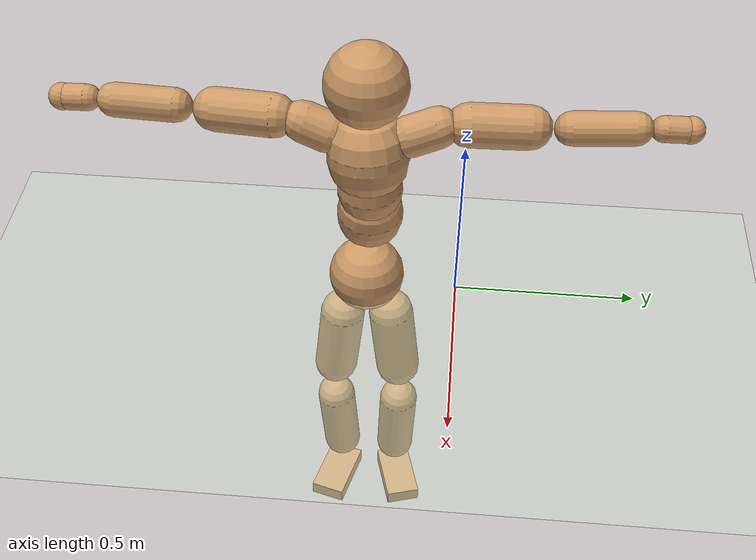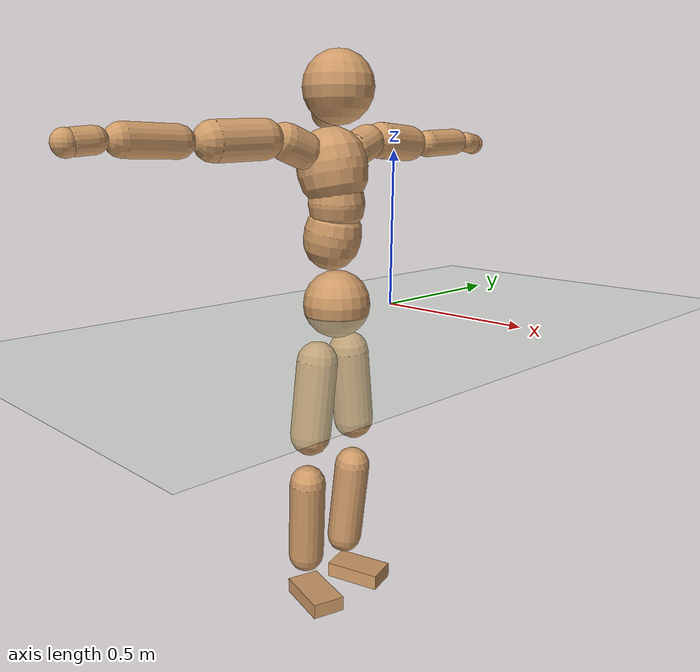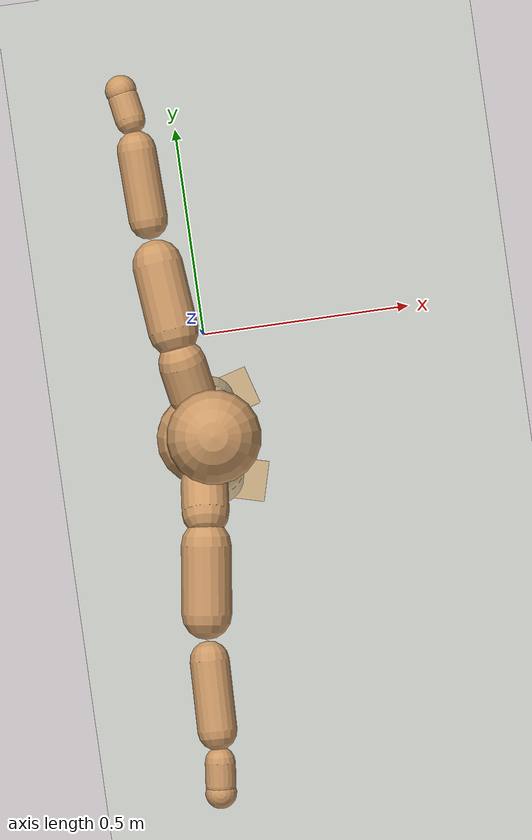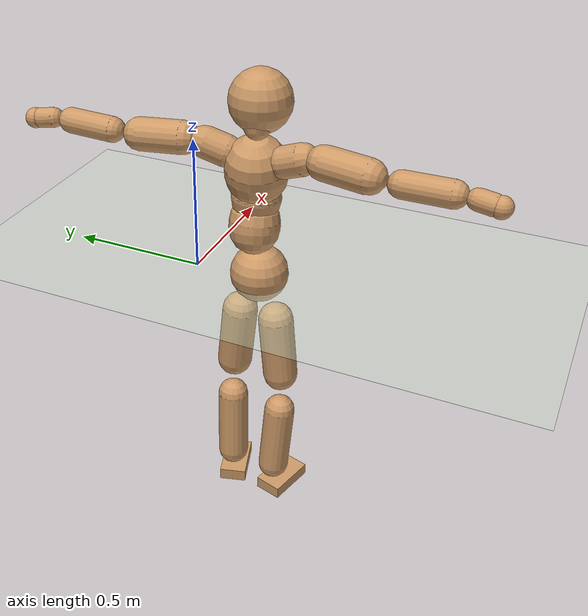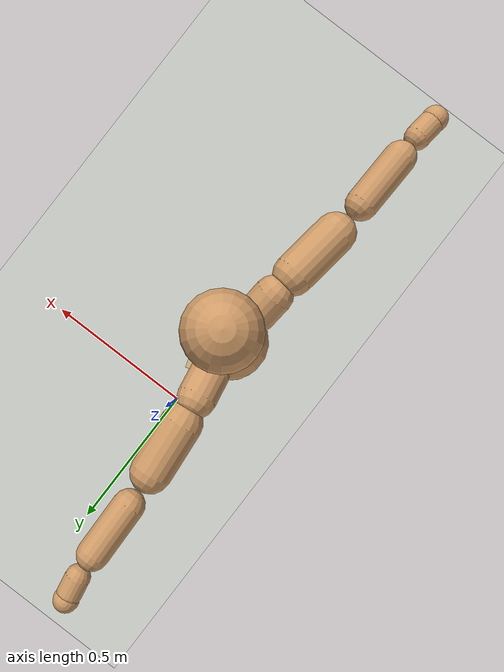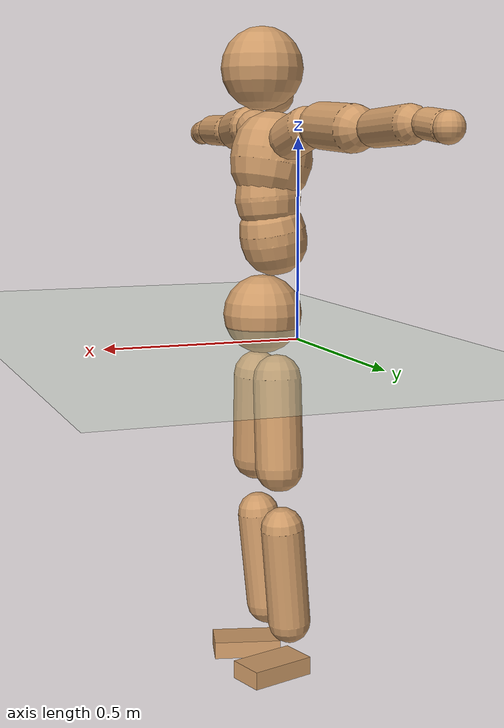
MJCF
<mujoco model="humanoid">
  <compiler coordinate="local"/>
  <default>
    <joint damping="0.0" armature="0.01" stiffness="0.0" limited="true"/>
    <geom conaffinity="1" condim="3" contype="7" margin="0.001" rgba="0.8 0.6 .4 1"/>
  </default>
  <asset>
    <texture type="skybox" builtin="gradient" rgb1=".4 .5 .6" rgb2="0 0 0" width="100" height="100"/>
    <texture builtin="flat" height="1278" mark="cross" markrgb="1 1 1" name="texgeom" random="0.01" rgb1="0.8 0.6 0.4" rgb2="0.8 0.6 0.4" type="cube" width="127"/>
    <texture builtin="checker" height="100" name="texplane" rgb1="0 0 0" rgb2="0.8 0.8 0.8" type="2d" width="100"/>
    <material name="MatPlane" reflectance="0.5" shininess="1" specular="1" texrepeat="60 60" texture="texplane"/>
    <material name="geom" texture="texgeom" texuniform="true"/>
  </asset>
  <worldbody>
    <light cutoff="100" diffuse="1 1 1" dir="-0 0 -1.3" directional="true" exponent="1" pos="0 0 1.3" specular=".1 .1 .1"/>
    <geom conaffinity="1" condim="3" name="floor" pos="0 0 0" rgba="0.8 0.9 0.8 1" size="100 100 .2" type="plane" material="MatPlane"/>
    <body name="Pelvis" pos="-0.0029 -0.2535 0.0334">
      <freejoint name="Pelvis"/>
      <geom type="sphere" contype="1" conaffinity="1" density="500" size="0.1060" pos="0.0000 0.0000 0.0000" name="Pelvis"/>
      <body name="L_Hip" pos="-0.016 0.0614 -0.0876">
        <joint name="L_Hip_x" type="hinge" pos="0 0 0" axis="1 0 0" stiffness="800" damping="80" armature="0.02" range="-180.0000 180.0000"/>
        <joint name="L_Hip_y" type="hinge" pos="0 0 0" axis="0 1 0" stiffness="800" damping="80" armature="0.02" range="-180.0000 180.0000"/>
        <joint name="L_Hip_z" type="hinge" pos="0 0 0" axis="0 0 1" stiffness="800" damping="80" armature="0.02" range="-180.0000 180.0000"/>
        <geom type="capsule" contype="1" conaffinity="1" density="500" fromto="0.0009 0.0082 -0.0796 0.0034 0.0327 -0.3184" size="0.0651" name="L_Hip"/>
        <body name="L_Knee" pos="0.0043 0.0409 -0.3979">
          <joint name="L_Knee_x" type="hinge" pos="0 0 0" axis="1 0 0" stiffness="800" damping="80" armature="0.02" range="-180.0000 180.0000"/>
          <joint name="L_Knee_y" type="hinge" pos="0 0 0" axis="0 1 0" stiffness="800" damping="80" armature="0.02" range="-180.0000 180.0000"/>
          <joint name="L_Knee_z" type="hinge" pos="0 0 0" axis="0 0 1" stiffness="800" damping="80" armature="0.02" range="-180.0000 180.0000"/>
          <geom type="capsule" contype="1" conaffinity="1" density="500" fromto="-0.0084 -0.0034 -0.0897 -0.0337 -0.0135 -0.3589" size="0.0585" name="L_Knee"/>
          <body name="L_Ankle" pos="-0.0421 -0.0168 -0.4486">
            <joint name="L_Ankle_x" type="hinge" pos="0 0 0" axis="1 0 0" stiffness="800" damping="80" armature="0.02" range="-180.0000 180.0000"/>
            <joint name="L_Ankle_y" type="hinge" pos="0 0 0" axis="0 1 0" stiffness="800" damping="80" armature="0.02" range="-180.0000 180.0000"/>
            <joint name="L_Ankle_z" type="hinge" pos="0 0 0" axis="0 0 1" stiffness="800" damping="80" armature="0.02" range="-180.0000 180.0000"/>
            <geom type="box" contype="1" conaffinity="1" density="500" pos="0.0637 0.0183 -0.0311" size="0.092 0.0517 0.0245" quat="0.9902 0.0000 0.0000 0.1398" name="L_Ankle"/>
            <body name="L_Toe" pos="0.1274 0.0367 -0.0622">
              <joint name="L_Toe_x" type="hinge" pos="0 0 0" axis="1 0 0" stiffness="500" damping="50" armature="0.02" range="-180.0000 180.0000"/>
              <joint name="L_Toe_y" type="hinge" pos="0 0 0" axis="0 1 0" stiffness="500" damping="50" armature="0.02" range="-180.0000 180.0000"/>
              <joint name="L_Toe_z" type="hinge" pos="0 0 0" axis="0 0 1" stiffness="500" damping="50" armature="0.02" range="-180.0000 180.0000"/>
              <geom type="box" contype="1" conaffinity="1" density="500" pos="0.0000 0.0000 0.0306" size="0.0011 0.0026 0.0012" quat="0.9895 0.0000 0.0000 0.1448" name="L_Toe"/>
            </body>
          </body>
        </body>
      </body>
      <body name="R_Hip" pos="-0.0101 -0.0641 -0.0971">
        <joint name="R_Hip_x" type="hinge" pos="0 0 0" axis="1 0 0" stiffness="800" damping="80" armature="0.02" range="-180.0000 180.0000"/>
        <joint name="R_Hip_y" type="hinge" pos="0 0 0" axis="0 1 0" stiffness="800" damping="80" armature="0.02" range="-180.0000 180.0000"/>
        <joint name="R_Hip_z" type="hinge" pos="0 0 0" axis="0 0 1" stiffness="800" damping="80" armature="0.02" range="-180.0000 180.0000"/>
        <geom type="capsule" contype="1" conaffinity="1" density="500" fromto="-0.0018 -0.0085 -0.0798 -0.0070 -0.0342 -0.3193" size="0.0647" name="R_Hip"/>
        <body name="R_Knee" pos="-0.0088 -0.0427 -0.3991">
          <joint name="R_Knee_x" type="hinge" pos="0 0 0" axis="1 0 0" stiffness="800" damping="80" armature="0.02" range="-180.0000 180.0000"/>
          <joint name="R_Knee_y" type="hinge" pos="0 0 0" axis="0 1 0" stiffness="800" damping="80" armature="0.02" range="-180.0000 180.0000"/>
          <joint name="R_Knee_z" type="hinge" pos="0 0 0" axis="0 0 1" stiffness="800" damping="80" armature="0.02" range="-180.0000 180.0000"/>
          <geom type="capsule" contype="1" conaffinity="1" density="500" fromto="-0.0077 0.0042 -0.0887 -0.0307 0.0168 -0.3547" size="0.0583" name="R_Knee"/>
          <body name="R_Ankle" pos="-0.0384 0.0211 -0.4434">
            <joint name="R_Ankle_x" type="hinge" pos="0 0 0" axis="1 0 0" stiffness="800" damping="80" armature="0.02" range="-180.0000 180.0000"/>
            <joint name="R_Ankle_y" type="hinge" pos="0 0 0" axis="0 1 0" stiffness="800" damping="80" armature="0.02" range="-180.0000 180.0000"/>
            <joint name="R_Ankle_z" type="hinge" pos="0 0 0" axis="0 0 1" stiffness="800" damping="80" armature="0.02" range="-180.0000 180.0000"/>
            <geom type="box" contype="1" conaffinity="1" density="500" pos="0.0676 -0.0183 -0.0323" size="0.0932 0.0533 0.0237" quat="0.9913 0.0000 0.0000 -0.1316" name="R_Ankle"/>
            <body name="R_Toe" pos="0.1352 -0.0366 -0.0646">
              <joint name="R_Toe_x" type="hinge" pos="0 0 0" axis="1 0 0" stiffness="500" damping="50" armature="0.02" range="-180.0000 180.0000"/>
              <joint name="R_Toe_y" type="hinge" pos="0 0 0" axis="0 1 0" stiffness="500" damping="50" armature="0.02" range="-180.0000 180.0000"/>
              <joint name="R_Toe_z" type="hinge" pos="0 0 0" axis="0 0 1" stiffness="500" damping="50" armature="0.02" range="-180.0000 180.0000"/>
              <geom type="box" contype="1" conaffinity="1" density="500" pos="0.0000 0.0000 0.0332" size="0.0011 0.0026 0.0012" quat="0.9924 0.0000 0.0000 -0.1230" name="R_Toe"/>
            </body>
          </body>
        </body>
      </body>
      <body name="Torso" pos="-0.0415 0.005 0.1352">
        <joint name="Torso_x" type="hinge" pos="0 0 0" axis="1 0 0" stiffness="1000" damping="100" armature="0.02" range="-180.0000 180.0000"/>
        <joint name="Torso_y" type="hinge" pos="0 0 0" axis="0 1 0" stiffness="1000" damping="100" armature="0.02" range="-180.0000 180.0000"/>
        <joint name="Torso_z" type="hinge" pos="0 0 0" axis="0 0 1" stiffness="1000" damping="100" armature="0.02" range="-180.0000 180.0000"/>
        <geom type="capsule" contype="1" conaffinity="1" density="500" fromto="0.0170 0.0031 0.0865 0.0113 0.0020 0.0577" size="0.0896" name="Torso"/>
        <body name="Spine" pos="0.0283 0.0051 0.1442">
          <joint name="Spine_x" type="hinge" pos="0 0 0" axis="1 0 0" stiffness="1000" damping="100" armature="0.02" range="-180.0000 180.0000"/>
          <joint name="Spine_y" type="hinge" pos="0 0 0" axis="0 1 0" stiffness="1000" damping="100" armature="0.02" range="-180.0000 180.0000"/>
          <joint name="Spine_z" type="hinge" pos="0 0 0" axis="0 0 1" stiffness="1000" damping="100" armature="0.02" range="-180.0000 180.0000"/>
          <geom type="capsule" contype="1" conaffinity="1" density="500" fromto="0.0025 -0.0017 0.0351 0.0017 -0.0011 0.0234" size="0.0878" name="Spine"/>
          <body name="Chest" pos="0.0042 -0.0029 0.0585">
            <joint name="Chest_x" type="hinge" pos="0 0 0" axis="1 0 0" stiffness="1000" damping="100" armature="0.02" range="-180.0000 180.0000"/>
            <joint name="Chest_y" type="hinge" pos="0 0 0" axis="0 1 0" stiffness="1000" damping="100" armature="0.02" range="-180.0000 180.0000"/>
            <joint name="Chest_z" type="hinge" pos="0 0 0" axis="0 0 1" stiffness="1000" damping="100" armature="0.02" range="-180.0000 180.0000"/>
            <geom type="capsule" contype="1" conaffinity="1" density="500" fromto="-0.0175 -0.0051 0.0921 -0.0117 -0.0034 0.0614" size="0.1089" name="Chest"/>
            <body name="Neck" pos="-0.04 -0.0148 0.2219">
              <joint name="Neck_x" type="hinge" pos="0 0 0" axis="1 0 0" stiffness="500" damping="50" armature="0.02" range="-180.0000 180.0000"/>
              <joint name="Neck_y" type="hinge" pos="0 0 0" axis="0 1 0" stiffness="500" damping="50" armature="0.02" range="-180.0000 180.0000"/>
              <joint name="Neck_z" type="hinge" pos="0 0 0" axis="0 0 1" stiffness="500" damping="50" armature="0.02" range="-180.0000 180.0000"/>
              <geom type="capsule" contype="1" conaffinity="1" density="500" fromto="0.0103 0.0018 0.0174 0.0411 0.0072 0.0697" size="0.0476" name="Neck"/>
              <body name="Head" pos="0.0514 0.009 0.0871">
                <joint name="Head_x" type="hinge" pos="0 0 0" axis="1 0 0" stiffness="500" damping="50" armature="0.02" range="-180.0000 180.0000"/>
                <joint name="Head_y" type="hinge" pos="0 0 0" axis="0 1 0" stiffness="500" damping="50" armature="0.02" range="-180.0000 180.0000"/>
                <joint name="Head_z" type="hinge" pos="0 0 0" axis="0 0 1" stiffness="500" damping="50" armature="0.02" range="-180.0000 180.0000"/>
                <geom type="sphere" contype="1" conaffinity="1" density="500" size="0.1085" pos="0.0000 0.0000 0.0000" name="Head"/>
              </body>
            </body>
            <body name="L_Thorax" pos="-0.0218 0.0733 0.1199">
              <joint name="L_Thorax_x" type="hinge" pos="0 0 0" axis="1 0 0" stiffness="500" damping="50" armature="0.02" range="-180.0000 180.0000"/>
              <joint name="L_Thorax_y" type="hinge" pos="0 0 0" axis="0 1 0" stiffness="500" damping="50" armature="0.02" range="-180.0000 180.0000"/>
              <joint name="L_Thorax_z" type="hinge" pos="0 0 0" axis="0 0 1" stiffness="500" damping="50" armature="0.02" range="-180.0000 180.0000"/>
              <geom type="capsule" contype="1" conaffinity="1" density="500" fromto="-0.0045 0.0250 0.0084 -0.0178 0.1000 0.0336" size="0.0556" name="L_Thorax"/>
              <body name="L_Shoulder" pos="-0.0223 0.125 0.042">
                <joint name="L_Shoulder_x" type="hinge" pos="0 0 0" axis="1 0 0" stiffness="500" damping="50" armature="0.02" range="-720.0000 720.0000"/>
                <joint name="L_Shoulder_y" type="hinge" pos="0 0 0" axis="0 1 0" stiffness="500" damping="50" armature="0.02" range="-720.0000 720.0000"/>
                <joint name="L_Shoulder_z" type="hinge" pos="0 0 0" axis="0 0 1" stiffness="500" damping="50" armature="0.02" range="-720.0000 720.0000"/>
                <geom type="capsule" contype="1" conaffinity="1" density="500" fromto="-0.0050 0.0521 -0.0029 -0.0201 0.2084 -0.0118" size="0.0586" name="L_Shoulder"/>
                <body name="L_Elbow" pos="-0.0252 0.2604 -0.0147">
                  <joint name="L_Elbow_x" type="hinge" pos="0 0 0" axis="1 0 0" stiffness="500" damping="50" armature="0.02" range="-720.0000 720.0000"/>
                  <joint name="L_Elbow_y" type="hinge" pos="0 0 0" axis="0 1 0" stiffness="500" damping="50" armature="0.02" range="-720.0000 720.0000"/>
                  <joint name="L_Elbow_z" type="hinge" pos="0 0 0" axis="0 0 1" stiffness="500" damping="50" armature="0.02" range="-720.0000 720.0000"/>
                  <geom type="capsule" contype="1" conaffinity="1" density="500" fromto="-0.0015 0.0540 0.0024 -0.0059 0.2160 0.0098" size="0.0452" name="L_Elbow"/>
                  <body name="L_Wrist" pos="-0.0074 0.27 0.0122">
                    <joint name="L_Wrist_x" type="hinge" pos="0 0 0" axis="1 0 0" stiffness="300" damping="30" armature="0.02" range="-180.0000 180.0000"/>
                    <joint name="L_Wrist_y" type="hinge" pos="0 0 0" axis="0 1 0" stiffness="300" damping="30" armature="0.02" range="-180.0000 180.0000"/>
                    <joint name="L_Wrist_z" type="hinge" pos="0 0 0" axis="0 0 1" stiffness="300" damping="30" armature="0.02" range="-180.0000 180.0000"/>
                    <geom type="capsule" contype="1" conaffinity="1" density="500" fromto="-0.0031 0.0176 -0.0021 -0.0126 0.0703 -0.0085" size="0.0351" name="L_Wrist"/>
                    <body name="L_Hand" pos="-0.0157 0.0878 -0.0107">
                      <joint name="L_Hand_x" type="hinge" pos="0 0 0" axis="1 0 0" stiffness="300" damping="30" armature="0.02" range="-180.0000 180.0000"/>
                      <joint name="L_Hand_y" type="hinge" pos="0 0 0" axis="0 1 0" stiffness="300" damping="30" armature="0.02" range="-180.0000 180.0000"/>
                      <joint name="L_Hand_z" type="hinge" pos="0 0 0" axis="0 0 1" stiffness="300" damping="30" armature="0.02" range="-180.0000 180.0000"/>
                      <geom type="sphere" contype="1" conaffinity="1" density="500" size="0.0362" pos="0.0000 0.0000 0.0000" name="L_Hand"/>
                    </body>
                  </body>
                </body>
              </body>
            </body>
            <body name="R_Thorax" pos="-0.0259 -0.0839 0.1188">
              <joint name="R_Thorax_x" type="hinge" pos="0 0 0" axis="1 0 0" stiffness="500" damping="50" armature="0.02" range="-180.0000 180.0000"/>
              <joint name="R_Thorax_y" type="hinge" pos="0 0 0" axis="0 1 0" stiffness="500" damping="50" armature="0.02" range="-180.0000 180.0000"/>
              <joint name="R_Thorax_z" type="hinge" pos="0 0 0" axis="0 0 1" stiffness="500" damping="50" armature="0.02" range="-180.0000 180.0000"/>
              <geom type="capsule" contype="1" conaffinity="1" density="500" fromto="-0.0020 -0.0227 0.0087 -0.0081 -0.0909 0.0348" size="0.0552" name="R_Thorax"/>
              <body name="R_Shoulder" pos="-0.0102 -0.1136 0.0435">
                <joint name="R_Shoulder_x" type="hinge" pos="0 0 0" axis="1 0 0" stiffness="500" damping="50" armature="0.02" range="-720.0000 720.0000"/>
                <joint name="R_Shoulder_y" type="hinge" pos="0 0 0" axis="0 1 0" stiffness="500" damping="50" armature="0.02" range="-720.0000 720.0000"/>
                <joint name="R_Shoulder_z" type="hinge" pos="0 0 0" axis="0 0 1" stiffness="500" damping="50" armature="0.02" range="-720.0000 720.0000"/>
                <geom type="capsule" contype="1" conaffinity="1" density="500" fromto="-0.0070 -0.0525 -0.0022 -0.0279 -0.2098 -0.0087" size="0.0588" name="R_Shoulder"/>
                <body name="R_Elbow" pos="-0.0348 -0.2623 -0.0108">
                  <joint name="R_Elbow_x" type="hinge" pos="0 0 0" axis="1 0 0" stiffness="500" damping="50" armature="0.02" range="-720.0000 720.0000"/>
                  <joint name="R_Elbow_y" type="hinge" pos="0 0 0" axis="0 1 0" stiffness="500" damping="50" armature="0.02" range="-720.0000 720.0000"/>
                  <joint name="R_Elbow_z" type="hinge" pos="0 0 0" axis="0 0 1" stiffness="500" damping="50" armature="0.02" range="-720.0000 720.0000"/>
                  <geom type="capsule" contype="1" conaffinity="1" density="500" fromto="-0.0016 -0.0543 0.0011 -0.0063 -0.2173 0.0045" size="0.0458" name="R_Elbow"/>
                  <body name="R_Wrist" pos="-0.0079 -0.2716 0.0057">
                    <joint name="R_Wrist_x" type="hinge" pos="0 0 0" axis="1 0 0" stiffness="300" damping="30" armature="0.02" range="-180.0000 180.0000"/>
                    <joint name="R_Wrist_y" type="hinge" pos="0 0 0" axis="0 1 0" stiffness="300" damping="30" armature="0.02" range="-180.0000 180.0000"/>
                    <joint name="R_Wrist_z" type="hinge" pos="0 0 0" axis="0 0 1" stiffness="300" damping="30" armature="0.02" range="-180.0000 180.0000"/>
                    <geom type="capsule" contype="1" conaffinity="1" density="500" fromto="-0.0020 -0.0179 -0.0017 -0.0079 -0.0715 -0.0069" size="0.0355" name="R_Wrist"/>
                    <body name="R_Hand" pos="-0.0098 -0.0894 -0.0087">
                      <joint name="R_Hand_x" type="hinge" pos="0 0 0" axis="1 0 0" stiffness="300" damping="30" armature="0.02" range="-180.0000 180.0000"/>
                      <joint name="R_Hand_y" type="hinge" pos="0 0 0" axis="0 1 0" stiffness="300" damping="30" armature="0.02" range="-180.0000 180.0000"/>
                      <joint name="R_Hand_z" type="hinge" pos="0 0 0" axis="0 0 1" stiffness="300" damping="30" armature="0.02" range="-180.0000 180.0000"/>
                      <geom type="sphere" contype="1" conaffinity="1" density="500" size="0.0365" pos="0.0000 0.0000 0.0000" name="R_Hand"/>
                    </body>
                  </body>
                </body>
              </body>
            </body>
          </body>
        </body>
      </body>
    </body>
  </worldbody>
  <actuator>
    <motor name="L_Hip_x" joint="L_Hip_x" gear="500"/>
    <motor name="L_Hip_y" joint="L_Hip_y" gear="500"/>
    <motor name="L_Hip_z" joint="L_Hip_z" gear="500"/>
    <motor name="L_Knee_x" joint="L_Knee_x" gear="500"/>
    <motor name="L_Knee_y" joint="L_Knee_y" gear="500"/>
    <motor name="L_Knee_z" joint="L_Knee_z" gear="500"/>
    <motor name="L_Ankle_x" joint="L_Ankle_x" gear="500"/>
    <motor name="L_Ankle_y" joint="L_Ankle_y" gear="500"/>
    <motor name="L_Ankle_z" joint="L_Ankle_z" gear="500"/>
    <motor name="L_Toe_x" joint="L_Toe_x" gear="500"/>
    <motor name="L_Toe_y" joint="L_Toe_y" gear="500"/>
    <motor name="L_Toe_z" joint="L_Toe_z" gear="500"/>
    <motor name="R_Hip_x" joint="R_Hip_x" gear="500"/>
    <motor name="R_Hip_y" joint="R_Hip_y" gear="500"/>
    <motor name="R_Hip_z" joint="R_Hip_z" gear="500"/>
    <motor name="R_Knee_x" joint="R_Knee_x" gear="500"/>
    <motor name="R_Knee_y" joint="R_Knee_y" gear="500"/>
    <motor name="R_Knee_z" joint="R_Knee_z" gear="500"/>
    <motor name="R_Ankle_x" joint="R_Ankle_x" gear="500"/>
    <motor name="R_Ankle_y" joint="R_Ankle_y" gear="500"/>
    <motor name="R_Ankle_z" joint="R_Ankle_z" gear="500"/>
    <motor name="R_Toe_x" joint="R_Toe_x" gear="500"/>
    <motor name="R_Toe_y" joint="R_Toe_y" gear="500"/>
    <motor name="R_Toe_z" joint="R_Toe_z" gear="500"/>
    <motor name="Torso_x" joint="Torso_x" gear="500"/>
    <motor name="Torso_y" joint="Torso_y" gear="500"/>
    <motor name="Torso_z" joint="Torso_z" gear="500"/>
    <motor name="Spine_x" joint="Spine_x" gear="500"/>
    <motor name="Spine_y" joint="Spine_y" gear="500"/>
    <motor name="Spine_z" joint="Spine_z" gear="500"/>
    <motor name="Chest_x" joint="Chest_x" gear="500"/>
    <motor name="Chest_y" joint="Chest_y" gear="500"/>
    <motor name="Chest_z" joint="Chest_z" gear="500"/>
    <motor name="Neck_x" joint="Neck_x" gear="500"/>
    <motor name="Neck_y" joint="Neck_y" gear="500"/>
    <motor name="Neck_z" joint="Neck_z" gear="500"/>
    <motor name="Head_x" joint="Head_x" gear="500"/>
    <motor name="Head_y" joint="Head_y" gear="500"/>
    <motor name="Head_z" joint="Head_z" gear="500"/>
    <motor name="L_Thorax_x" joint="L_Thorax_x" gear="500"/>
    <motor name="L_Thorax_y" joint="L_Thorax_y" gear="500"/>
    <motor name="L_Thorax_z" joint="L_Thorax_z" gear="500"/>
    <motor name="L_Shoulder_x" joint="L_Shoulder_x" gear="500"/>
    <motor name="L_Shoulder_y" joint="L_Shoulder_y" gear="500"/>
    <motor name="L_Shoulder_z" joint="L_Shoulder_z" gear="500"/>
    <motor name="L_Elbow_x" joint="L_Elbow_x" gear="500"/>
    <motor name="L_Elbow_y" joint="L_Elbow_y" gear="500"/>
    <motor name="L_Elbow_z" joint="L_Elbow_z" gear="500"/>
    <motor name="L_Wrist_x" joint="L_Wrist_x" gear="500"/>
    <motor name="L_Wrist_y" joint="L_Wrist_y" gear="500"/>
    <motor name="L_Wrist_z" joint="L_Wrist_z" gear="500"/>
    <motor name="L_Hand_x" joint="L_Hand_x" gear="500"/>
    <motor name="L_Hand_y" joint="L_Hand_y" gear="500"/>
    <motor name="L_Hand_z" joint="L_Hand_z" gear="500"/>
    <motor name="R_Thorax_x" joint="R_Thorax_x" gear="500"/>
    <motor name="R_Thorax_y" joint="R_Thorax_y" gear="500"/>
    <motor name="R_Thorax_z" joint="R_Thorax_z" gear="500"/>
    <motor name="R_Shoulder_x" joint="R_Shoulder_x" gear="500"/>
    <motor name="R_Shoulder_y" joint="R_Shoulder_y" gear="500"/>
    <motor name="R_Shoulder_z" joint="R_Shoulder_z" gear="500"/>
    <motor name="R_Elbow_x" joint="R_Elbow_x" gear="500"/>
    <motor name="R_Elbow_y" joint="R_Elbow_y" gear="500"/>
    <motor name="R_Elbow_z" joint="R_Elbow_z" gear="500"/>
    <motor name="R_Wrist_x" joint="R_Wrist_x" gear="500"/>
    <motor name="R_Wrist_y" joint="R_Wrist_y" gear="500"/>
    <motor name="R_Wrist_z" joint="R_Wrist_z" gear="500"/>
    <motor name="R_Hand_x" joint="R_Hand_x" gear="500"/>
    <motor name="R_Hand_y" joint="R_Hand_y" gear="500"/>
    <motor name="R_Hand_z" joint="R_Hand_z" gear="500"/>
  </actuator>
  <contact>
    <exclude body1="Torso" body2="Chest"/>
    <exclude body1="Head" body2="Chest"/>
    <exclude body1="R_Knee" body2="R_Toe"/>
    <exclude body1="R_Knee" body2="L_Ankle"/>
    <exclude body1="R_Knee" body2="L_Toe"/>
    <exclude body1="L_Knee" body2="L_Toe"/>
    <exclude body1="L_Knee" body2="R_Ankle"/>
    <exclude body1="L_Knee" body2="R_Toe"/>
    <exclude body1="L_Shoulder" body2="Chest"/>
    <exclude body1="R_Shoulder" body2="Chest"/>
  </contact>
  <sensor/>
  <size njmax="700" nconmax="700"/>
</mujoco>
